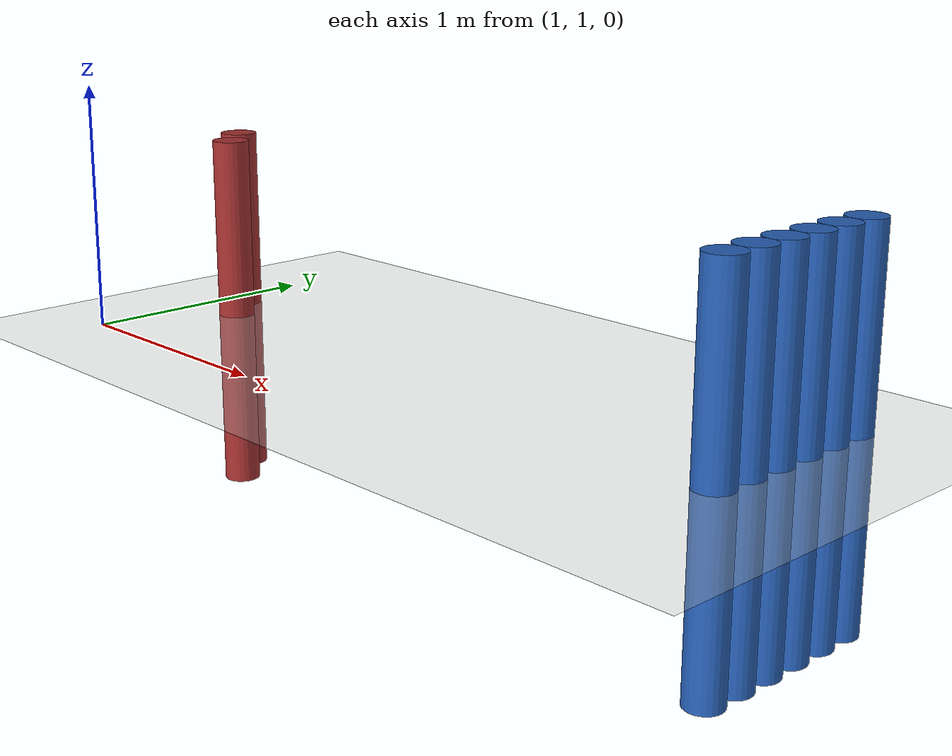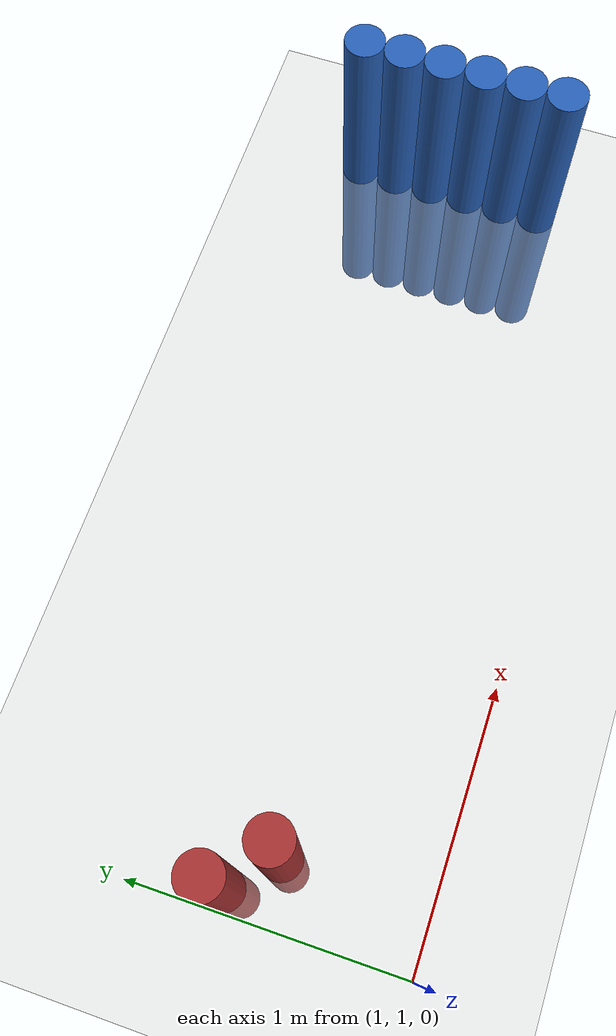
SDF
<sdf version="1.6">
 <world name="default">
  <model name="ground_plane">
   <static>1</static>
   <link name="link">
    <collision name="collision">
     <geometry><plane><normal>0 0 1</normal><size>100 100</size></plane></geometry>
     <surface><friction><ode><mu>100</mu><mu2>50</mu2></ode></friction></surface>
    </collision>
    <visual name="visual">
     <cast_shadows>0</cast_shadows>
     <geometry><plane><normal>0 0 1</normal><size>100 100</size></plane></geometry>
     <material>
      <script><uri>file://media/materials/scripts/gazebo.material</uri><name>Gazebo/Grey</name></script>
     </material>
    </visual>
   </link>
  </model>
  <model name="unit_cylinder_134">
   <static>1</static>
   <pose>3.925000 1.525000 0.000000 0.000000 0.000000 0.000000</pose>
   <link name="link">
    <inertial>
     <mass>1</mass>
     <inertia><ixx>0.145833</ixx><ixy>0</ixy><ixz>0</ixz><iyy>0.145833</iyy><iyz>0</iyz><izz>0.125</izz></inertia>
    </inertial>
    <collision name="collision">
     <geometry><cylinder><radius>0.075000</radius><length>1.5</length></cylinder></geometry>
    </collision>
    <visual name="visual">
     <geometry><cylinder><radius>0.075000</radius><length>1.5</length></cylinder></geometry>
     <material>
      <ambient>0.152000 0.379000 0.720000 1</ambient>
      <diffuse>0.152000 0.379000 0.720000 1</diffuse>
     </material>
     <material>
      <script><name>Gazebo/Grey</name><uri>file://media/materials/scripts/gazebo.material</uri></script>
     </material>
    </visual>
   </link>
  </model>
  <model name="unit_cylinder_136">
   <static>1</static>
   <pose>3.925000 1.675000 0.000000 0.000000 0.000000 0.000000</pose>
   <link name="link">
    <inertial>
     <mass>1</mass>
     <inertia><ixx>0.145833</ixx><ixy>0</ixy><ixz>0</ixz><iyy>0.145833</iyy><iyz>0</iyz><izz>0.125</izz></inertia>
    </inertial>
    <collision name="collision">
     <geometry><cylinder><radius>0.075000</radius><length>1.5</length></cylinder></geometry>
    </collision>
    <visual name="visual">
     <geometry><cylinder><radius>0.075000</radius><length>1.5</length></cylinder></geometry>
     <material>
      <ambient>0.152000 0.379000 0.720000 1</ambient>
      <diffuse>0.152000 0.379000 0.720000 1</diffuse>
     </material>
     <material>
      <script><name>Gazebo/Grey</name><uri>file://media/materials/scripts/gazebo.material</uri></script>
     </material>
    </visual>
   </link>
  </model>
  <model name="unit_cylinder_138">
   <static>1</static>
   <pose>3.925000 1.825000 0.000000 0.000000 0.000000 0.000000</pose>
   <link name="link">
    <inertial>
     <mass>1</mass>
     <inertia><ixx>0.145833</ixx><ixy>0</ixy><ixz>0</ixz><iyy>0.145833</iyy><iyz>0</iyz><izz>0.125</izz></inertia>
    </inertial>
    <collision name="collision">
     <geometry><cylinder><radius>0.075000</radius><length>1.5</length></cylinder></geometry>
    </collision>
    <visual name="visual">
     <geometry><cylinder><radius>0.075000</radius><length>1.5</length></cylinder></geometry>
     <material>
      <ambient>0.152000 0.379000 0.720000 1</ambient>
      <diffuse>0.152000 0.379000 0.720000 1</diffuse>
     </material>
     <material>
      <script><name>Gazebo/Grey</name><uri>file://media/materials/scripts/gazebo.material</uri></script>
     </material>
    </visual>
   </link>
  </model>
  <model name="unit_cylinder_140">
   <static>1</static>
   <pose>3.925000 1.975000 0.000000 0.000000 0.000000 0.000000</pose>
   <link name="link">
    <inertial>
     <mass>1</mass>
     <inertia><ixx>0.145833</ixx><ixy>0</ixy><ixz>0</ixz><iyy>0.145833</iyy><iyz>0</iyz><izz>0.125</izz></inertia>
    </inertial>
    <collision name="collision">
     <geometry><cylinder><radius>0.075000</radius><length>1.5</length></cylinder></geometry>
    </collision>
    <visual name="visual">
     <geometry><cylinder><radius>0.075000</radius><length>1.5</length></cylinder></geometry>
     <material>
      <ambient>0.152000 0.379000 0.720000 1</ambient>
      <diffuse>0.152000 0.379000 0.720000 1</diffuse>
     </material>
     <material>
      <script><name>Gazebo/Grey</name><uri>file://media/materials/scripts/gazebo.material</uri></script>
     </material>
    </visual>
   </link>
  </model>
  <model name="unit_cylinder_142">
   <static>1</static>
   <pose>3.925000 2.125000 0.000000 0.000000 0.000000 0.000000</pose>
   <link name="link">
    <inertial>
     <mass>1</mass>
     <inertia><ixx>0.145833</ixx><ixy>0</ixy><ixz>0</ixz><iyy>0.145833</iyy><iyz>0</iyz><izz>0.125</izz></inertia>
    </inertial>
    <collision name="collision">
     <geometry><cylinder><radius>0.075000</radius><length>1.5</length></cylinder></geometry>
    </collision>
    <visual name="visual">
     <geometry><cylinder><radius>0.075000</radius><length>1.5</length></cylinder></geometry>
     <material>
      <ambient>0.152000 0.379000 0.720000 1</ambient>
      <diffuse>0.152000 0.379000 0.720000 1</diffuse>
     </material>
     <material>
      <script><name>Gazebo/Grey</name><uri>file://media/materials/scripts/gazebo.material</uri></script>
     </material>
    </visual>
   </link>
  </model>
  <model name="unit_cylinder_279">
   <static>1</static>
   <pose>1.075000 1.675000 0.000000 0.000000 0.000000 0.000000</pose>
   <link name="link">
    <inertial>
     <mass>1</mass>
     <inertia><ixx>0.145833</ixx><ixy>0</ixy><ixz>0</ixz><iyy>0.145833</iyy><iyz>0</iyz><izz>0.125</izz></inertia>
    </inertial>
    <collision name="collision">
     <geometry><cylinder><radius>0.075000</radius><length>1.5</length></cylinder></geometry>
    </collision>
    <visual name="visual">
     <geometry><cylinder><radius>0.075000</radius><length>1.5</length></cylinder></geometry>
     <material>
      <ambient>0.648000 0.192000 0.192000 1</ambient>
      <diffuse>0.648000 0.192000 0.192000 1</diffuse>
     </material>
     <material>
      <script><name>Gazebo/Grey</name><uri>file://media/materials/scripts/gazebo.material</uri></script>
     </material>
    </visual>
   </link>
  </model>
  <model name="unit_cylinder_282">
   <static>1</static>
   <pose>1.225000 1.525000 0.000000 0.000000 0.000000 0.000000</pose>
   <link name="link">
    <inertial>
     <mass>1</mass>
     <inertia><ixx>0.145833</ixx><ixy>0</ixy><ixz>0</ixz><iyy>0.145833</iyy><iyz>0</iyz><izz>0.125</izz></inertia>
    </inertial>
    <collision name="collision">
     <geometry><cylinder><radius>0.075000</radius><length>1.5</length></cylinder></geometry>
    </collision>
    <visual name="visual">
     <geometry><cylinder><radius>0.075000</radius><length>1.5</length></cylinder></geometry>
     <material>
      <ambient>0.648000 0.192000 0.192000 1</ambient>
      <diffuse>0.648000 0.192000 0.192000 1</diffuse>
     </material>
     <material>
      <script><name>Gazebo/Grey</name><uri>file://media/materials/scripts/gazebo.material</uri></script>
     </material>
    </visual>
   </link>
  </model>
  <model name="unit_cylinder_318">
   <static>1</static>
   <pose>3.925000 1.375000 0.000000 0.000000 0.000000 0.000000</pose>
   <link name="link">
    <inertial>
     <mass>1</mass>
     <inertia><ixx>0.145833</ixx><ixy>0</ixy><ixz>0</ixz><iyy>0.145833</iyy><iyz>0</iyz><izz>0.125</izz></inertia>
    </inertial>
    <collision name="collision">
     <geometry><cylinder><radius>0.075000</radius><length>1.5</length></cylinder></geometry>
    </collision>
    <visual name="visual">
     <geometry><cylinder><radius>0.075000</radius><length>1.5</length></cylinder></geometry>
     <material>
      <ambient>0.152000 0.379000 0.720000 1</ambient>
      <diffuse>0.152000 0.379000 0.720000 1</diffuse>
     </material>
     <material>
      <script><name>Gazebo/Grey</name><uri>file://media/materials/scripts/gazebo.material</uri></script>
     </material>
    </visual>
   </link>
  </model>
  <model name="unit_cylinder_319">
   <static>1</static>
   <pose>3.925000 1.525000 0.000000 0.000000 0.000000 0.000000</pose>
   <link name="link">
    <inertial>
     <mass>1</mass>
     <inertia><ixx>0.145833</ixx><ixy>0</ixy><ixz>0</ixz><iyy>0.145833</iyy><iyz>0</iyz><izz>0.125</izz></inertia>
    </inertial>
    <collision name="collision">
     <geometry><cylinder><radius>0.075000</radius><length>1.5</length></cylinder></geometry>
    </collision>
    <visual name="visual">
     <geometry><cylinder><radius>0.075000</radius><length>1.5</length></cylinder></geometry>
     <material>
      <ambient>0.152000 0.379000 0.720000 1</ambient>
      <diffuse>0.152000 0.379000 0.720000 1</diffuse>
     </material>
     <material>
      <script><name>Gazebo/Grey</name><uri>file://media/materials/scripts/gazebo.material</uri></script>
     </material>
    </visual>
   </link>
  </model>
  <model name="unit_cylinder_320">
   <static>1</static>
   <pose>3.925000 1.675000 0.000000 0.000000 0.000000 0.000000</pose>
   <link name="link">
    <inertial>
     <mass>1</mass>
     <inertia><ixx>0.145833</ixx><ixy>0</ixy><ixz>0</ixz><iyy>0.145833</iyy><iyz>0</iyz><izz>0.125</izz></inertia>
    </inertial>
    <collision name="collision">
     <geometry><cylinder><radius>0.075000</radius><length>1.5</length></cylinder></geometry>
    </collision>
    <visual name="visual">
     <geometry><cylinder><radius>0.075000</radius><length>1.5</length></cylinder></geometry>
     <material>
      <ambient>0.152000 0.379000 0.720000 1</ambient>
      <diffuse>0.152000 0.379000 0.720000 1</diffuse>
     </material>
     <material>
      <script><name>Gazebo/Grey</name><uri>file://media/materials/scripts/gazebo.material</uri></script>
     </material>
    </visual>
   </link>
  </model>
  <model name="unit_cylinder_321">
   <static>1</static>
   <pose>3.925000 1.825000 0.000000 0.000000 0.000000 0.000000</pose>
   <link name="link">
    <inertial>
     <mass>1</mass>
     <inertia><ixx>0.145833</ixx><ixy>0</ixy><ixz>0</ixz><iyy>0.145833</iyy><iyz>0</iyz><izz>0.125</izz></inertia>
    </inertial>
    <collision name="collision">
     <geometry><cylinder><radius>0.075000</radius><length>1.5</length></cylinder></geometry>
    </collision>
    <visual name="visual">
     <geometry><cylinder><radius>0.075000</radius><length>1.5</length></cylinder></geometry>
     <material>
      <ambient>0.152000 0.379000 0.720000 1</ambient>
      <diffuse>0.152000 0.379000 0.720000 1</diffuse>
     </material>
     <material>
      <script><name>Gazebo/Grey</name><uri>file://media/materials/scripts/gazebo.material</uri></script>
     </material>
    </visual>
   </link>
  </model>
  <model name="unit_cylinder_322">
   <static>1</static>
   <pose>3.925000 1.975000 0.000000 0.000000 0.000000 0.000000</pose>
   <link name="link">
    <inertial>
     <mass>1</mass>
     <inertia><ixx>0.145833</ixx><ixy>0</ixy><ixz>0</ixz><iyy>0.145833</iyy><iyz>0</iyz><izz>0.125</izz></inertia>
    </inertial>
    <collision name="collision">
     <geometry><cylinder><radius>0.075000</radius><length>1.5</length></cylinder></geometry>
    </collision>
    <visual name="visual">
     <geometry><cylinder><radius>0.075000</radius><length>1.5</length></cylinder></geometry>
     <material>
      <ambient>0.152000 0.379000 0.720000 1</ambient>
      <diffuse>0.152000 0.379000 0.720000 1</diffuse>
     </material>
     <material>
      <script><name>Gazebo/Grey</name><uri>file://media/materials/scripts/gazebo.material</uri></script>
     </material>
    </visual>
   </link>
  </model>
 </world>
</sdf>
